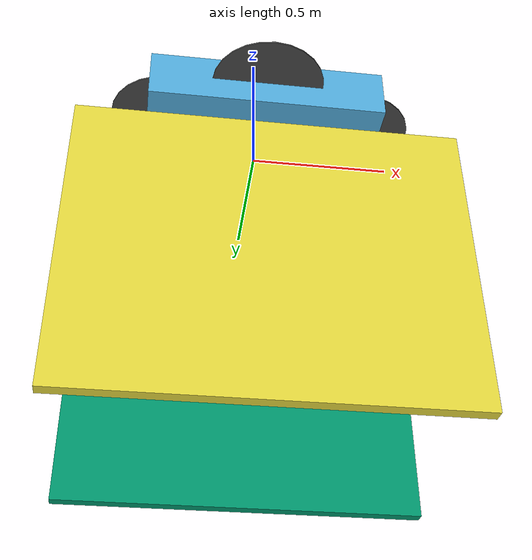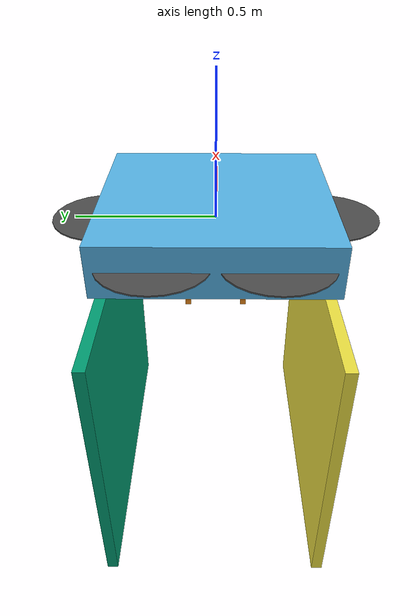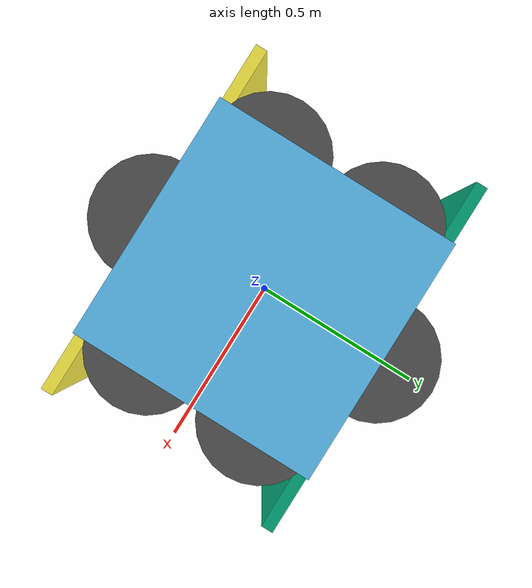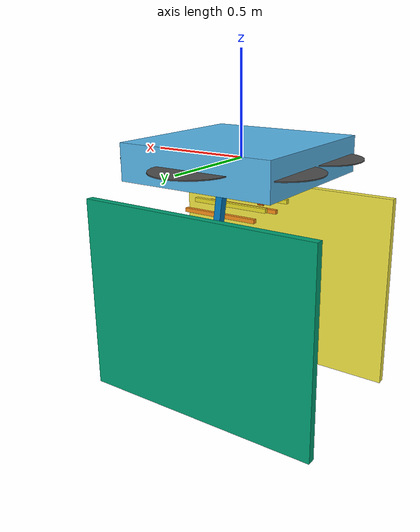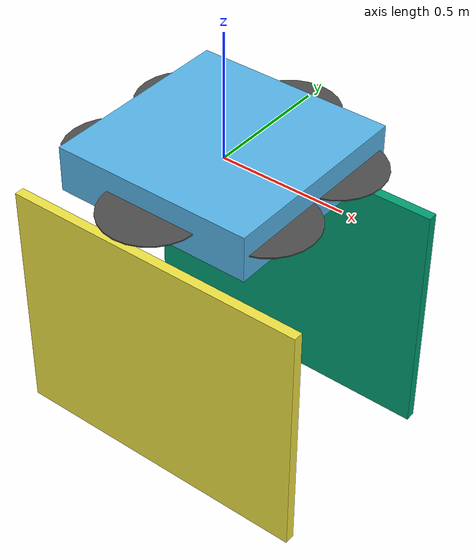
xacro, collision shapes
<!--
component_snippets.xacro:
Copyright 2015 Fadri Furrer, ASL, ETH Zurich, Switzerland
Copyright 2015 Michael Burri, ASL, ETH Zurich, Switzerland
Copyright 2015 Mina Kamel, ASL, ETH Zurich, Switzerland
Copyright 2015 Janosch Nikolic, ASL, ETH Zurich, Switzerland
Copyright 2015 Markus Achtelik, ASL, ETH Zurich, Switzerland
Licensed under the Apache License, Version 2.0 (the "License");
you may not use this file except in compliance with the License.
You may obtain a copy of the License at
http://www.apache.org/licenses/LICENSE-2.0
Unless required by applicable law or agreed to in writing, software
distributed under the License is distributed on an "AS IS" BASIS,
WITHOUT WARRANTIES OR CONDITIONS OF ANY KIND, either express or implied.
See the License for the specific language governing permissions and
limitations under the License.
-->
<?xml version="1.0"?>

<robot name="aeroarms" xmlns:xacro="http://ros.org/wiki/xacro">
  <!-- Properties that can be assigned at build time as arguments.
  Is there a reason not to make all properties arguments?
  -->
  <xacro:arg name='mavlink_addr' default='INADDR_ANY' />
  <xacro:arg name='mavlink_udp_port' default='14560' />
  <xacro:arg name='visual_material' default='DarkGrey' />
  <xacro:arg name='enable_mavlink_interface' default='true' />
  <xacro:arg name='enable_gps_plugin' default='true' />
  <xacro:arg name='gps_noise' default='true' />
  <xacro:arg name='enable_ground_truth' default='false' />
  <xacro:arg name='enable_logging' default='false' />

  <!-- macros for gazebo plugins, sensors -->
  <xacro:include filename="$(find arm_description)/urdf/component_snippets.xacro" />

  <!-- Instantiate aeroarms "mechanics" -->
  <xacro:include filename="$(find arm_description)/models/aeroarms_hecatonquiros_collision/geometry.xacro" />
 <!--Arm transmission-->
  <xacro:include filename="$(find arm_description)/models/aeroarms_hecatonquiros_collision/arm.transmission.xacro" />

  <xacro:if value="$(arg enable_gps_plugin)">
    <!-- Instantiate gps plugin. -->
    <xacro:gps_plugin_macro
      namespace="${namespace}"
      gps_noise="$(arg gps_noise)"
      >
    </xacro:gps_plugin_macro>
  </xacro:if>

  <xacro:if value="$(arg enable_mavlink_interface)">
  <!-- Instantiate mavlink telemetry interface. -->
  <xacro:mavlink_interface_macro
    namespace="${namespace}"
    imu_sub_topic="/imu"
    mavlink_addr="$(arg mavlink_addr)"
    mavlink_udp_port="$(arg mavlink_udp_port)"
    >
  </xacro:mavlink_interface_macro>
  </xacro:if>

  <!-- Mount an ADIS16448 IMU. -->
  <xacro:imu_plugin_macro
    namespace="${namespace}"
    imu_suffix=""
    parent_link="base_link"
    imu_topic="/imu"
    mass_imu_sensor="0.015"
    gyroscope_noise_density="0.0003394"
    gyroscopoe_random_walk="0.000038785"
    gyroscope_bias_correlation_time="1000.0"
    gyroscope_turn_on_bias_sigma="0.0087"
    accelerometer_noise_density="0.004"
    accelerometer_random_walk="0.006"
    accelerometer_bias_correlation_time="300.0"
    accelerometer_turn_on_bias_sigma="0.1960"
  >
    <inertia ixx="0.00001" ixy="0.0" ixz="0.0" iyy="0.00001" iyz="0.0" izz="0.00001" />
    <origin xyz="0 0 0" rpy="0 0 0" />
  </xacro:imu_plugin_macro>

  <xacro:if value="$(arg enable_ground_truth)">
    <!-- Mount an IMU providing ground truth. -->
    <xacro:imu_plugin_macro
      namespace="${namespace}"
      imu_suffix="gt"
      parent_link="base_link"
      imu_topic="ground_truth/imu"
      mass_imu_sensor="0.00001"
      gyroscope_noise_density="0.0"
      gyroscopoe_random_walk="0.0"
      gyroscope_bias_correlation_time="1000.0"
      gyroscope_turn_on_bias_sigma="0.0"
      accelerometer_noise_density="0.0"
      accelerometer_random_walk="0.0"
      accelerometer_bias_correlation_time="300.0"
      accelerometer_turn_on_bias_sigma="0.0"
    >
      <inertia ixx="0.00001" ixy="0.0" ixz="0.0" iyy="0.00001" iyz="0.0" izz="0.00001" />
      <origin xyz="0 0 0" rpy="0 0 0" />
    </xacro:imu_plugin_macro>

    <!-- Mount a generic odometry sensor providing ground truth. -->
    <xacro:odometry_plugin_macro
      namespace="${namespace}/ground_truth"
      odometry_sensor_suffix="gt"
      parent_link="base_link"
      pose_topic="pose"
      pose_with_covariance_topic="pose_with_covariance"
      position_topic="position"
      transform_topic="transform"
      odometry_topic="odometry"
      parent_frame_id="world"
      mass_odometry_sensor="0.00001"
      measurement_divisor="1"
      measurement_delay="0"
      unknown_delay="0.0"
      noise_normal_position="0 0 0"
      noise_normal_quaternion="0 0 0"
      noise_normal_linear_velocity="0 0 0"
      noise_normal_angular_velocity="0 0 0"
      noise_uniform_position="0 0 0"
      noise_uniform_quaternion="0 0 0"
      noise_uniform_linear_velocity="0 0 0"
      noise_uniform_angular_velocity="0 0 0"
      enable_odometry_map="false"
      odometry_map=""
      image_scale=""
    >
      <inertia ixx="0.00001" ixy="0.0" ixz="0.0" iyy="0.00001" iyz="0.0" izz="0.00001" /> <!-- [kg.m^2] [kg.m^2] [kg.m^2] [kg.m^2] [kg.m^2] [kg.m^2] -->
      <origin xyz="0.0 0.0 0.0" rpy="0.0 0.0 0.0" />
    </xacro:odometry_plugin_macro>
  </xacro:if>

  <xacro:if value="$(arg enable_logging)">
    <!-- Instantiate a logger -->
    <xacro:bag_plugin_macro
      namespace="${namespace}"
      bag_file="$(arg log_file)"
      rotor_velocity_slowdown_sim="${rotor_velocity_slowdown_sim}"
    >
    </xacro:bag_plugin_macro>
  </xacro:if>

</robot>

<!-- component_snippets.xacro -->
<robot xmlns:xacro="http://ros.org/wiki/xacro">
  <!-- Macro to add logging to a bag file. -->
  <xacro:macro name="bag_plugin_macro"
    params="namespace bag_file rotor_velocity_slowdown_sim">
    <gazebo>
      <plugin filename="librotors_gazebo_bag_plugin.so" name="rosbag">
        <robotNamespace>${namespace}</robotNamespace>
        <bagFileName>${bag_file}</bagFileName>
        <linkName>base_link</linkName>
        <frameId>base_link</frameId>
        <commandAttitudeThrustSubTopic>command/attitude</commandAttitudeThrustSubTopic>
        <commandAttitudeThrustPubTopic>command/attitude</commandAttitudeThrustPubTopic>
        <rotorVelocitySlowdownSim>${rotor_velocity_slowdown_sim}</rotorVelocitySlowdownSim>
      </plugin>
    </gazebo>
  </xacro:macro>

    <gazebo>
  <plugin name="gazebo_ros_control" filename="libgazebo_ros_control.so">
    <robotNamespace>/aeroarms</robotNamespace>
  </plugin>
</gazebo>

  <!-- Macro to add a camera. -->
  <xacro:macro name="camera_macro"
    params="namespace parent_link camera_suffix frame_rate
      horizontal_fov image_width image_height image_format min_distance
      max_distance noise_mean noise_stddev enable_visual *cylinder *origin">
    <link name="${namespace}/camera_${camera_suffix}_link">
      <collision>
        <origin xyz="0 0 0" rpy="0 0 0" />
        <geometry>
          <xacro:insert_block name="cylinder" />
        </geometry>
      </collision>
      <xacro:if value="${enable_visual}">
        <visual>
          <origin xyz="0 0 0" rpy="0 1.57079632679 0" />
          <geometry>
            <xacro:insert_block name="cylinder" />
          </geometry>
          <material name="red" />
        </visual>
      </xacro:if>
      <inertial>
        <mass value="1e-5" />
        <origin xyz="0 0 0" rpy="0 0 0" />
        <inertia ixx="1e-6" ixy="0" ixz="0" iyy="1e-6" iyz="0" izz="1e-6" />
      </inertial>
    </link>
    <joint name="${namespace}/camera_${camera_suffix}_joint" type="fixed">
      <xacro:insert_block name="origin" />
      <parent link="${parent_link}" />
      <child link="${namespace}/camera_${camera_suffix}_link" />
    </joint>
    <gazebo reference="${namespace}/camera_${camera_suffix}_link">
      <sensor type="camera" name="${namespace}_camera_${camera_suffix}">
        <update_rate>${frame_rate}</update_rate>
        <camera name="head">
          <horizontal_fov>${horizontal_fov}</horizontal_fov>
          <image>
            <width>${image_width}</width>
            <height>${image_height}</height>
            <format>${image_format}</format>
          </image>
          <clip>
            <near>${min_distance}</near>
            <far>${max_distance}</far>
          </clip>
          <noise>
            <type>gaussian</type>
            <!-- Noise is sampled independently per pixel on each frame.
                 That pixel's noise value is added to each of its color
                 channels, which at that point lie in the range [0,1]. -->
            <mean>${noise_mean}</mean>
            <stddev>${noise_stddev}</stddev>
          </noise>
        </camera>
        <plugin name="${namespace}_camera_${camera_suffix}_controller" filename="libgazebo_ros_camera.so">
          <robotNamespace>${namespace}</robotNamespace>
          <alwaysOn>true</alwaysOn>
          <updateRate>${frame_rate}</updateRate>
          <cameraName>camera_${camera_suffix}</cameraName>
          <imageTopicName>image_raw</imageTopicName>
          <cameraInfoTopicName>camera_info</cameraInfoTopicName>
          <frameName>camera_${camera_suffix}_link</frameName>
          <hackBaseline>0.0</hackBaseline>
          <distortionK1>0.0</distortionK1>
          <distortionK2>0.0</distortionK2>
          <distortionK3>0.0</distortionK3>
          <distortionT1>0.0</distortionT1>
          <distortionT2>0.0</distortionT2>
        </plugin>
      </sensor>
    </gazebo>
  </xacro:macro>

  <!-- Macro to add the controller interface. -->
  <xacro:macro name="controller_plugin_macro" params="namespace imu_sub_topic">
    <gazebo>
      <plugin name="controller_interface" filename="librotors_gazebo_controller_interface.so">
        <robotNamespace>${namespace}</robotNamespace>
        <commandAttitudeThrustSubTopic>/command/attitude</commandAttitudeThrustSubTopic>
        <commandRateThrustSubTopic>/command/rate</commandRateThrustSubTopic>
        <commandMotorSpeedSubTopic>/command/motor_speed</commandMotorSpeedSubTopic>
        <imuSubTopic>/${imu_sub_topic}</imuSubTopic>
        <motorSpeedCommandPubTopic>/gazebo/command/motor_speed</motorSpeedCommandPubTopic>
      </plugin>
    </gazebo>
  </xacro:macro>

  <!-- Macro to add the gps plugin. -->
  <xacro:macro name="gps_plugin_macro" params="namespace gps_noise">
    <gazebo>
      <plugin name='gps_plugin' filename='libgazebo_gps_plugin.so'>
        <robotNamespace>${namespace}</robotNamespace>
        <gpsNoise>${gps_noise}</gpsNoise>
      </plugin>
    </gazebo>
  </xacro:macro>

  <!-- Macro to add the mavlink interface. -->
  <xacro:macro name="mavlink_interface_macro" params="namespace imu_sub_topic mavlink_addr mavlink_udp_port">
    <gazebo>
      <plugin name="mavlink_interface" filename="librotors_gazebo_mavlink_interface.so">
        <robotNamespace>${namespace}</robotNamespace>
        <imuSubTopic>${imu_sub_topic}</imuSubTopic>
        <gpsSubTopic>/gps</gpsSubTopic>
        <mavlink_addr>$(arg mavlink_addr)</mavlink_addr>
        <mavlink_udp_port>$(arg mavlink_udp_port)</mavlink_udp_port>
        <motorSpeedCommandPubTopic>/gazebo/command/motor_speed</motorSpeedCommandPubTopic>
        <control_channels>
          <channel name="rotor1">
            <input_index>0</input_index>
            <input_offset>0</input_offset>
            <input_scaling>1000</input_scaling>
            <zero_position_disarmed>0</zero_position_disarmed>
            <zero_position_armed>100</zero_position_armed>
            <joint_control_type>velocity</joint_control_type>
          </channel>
          <channel name="rotor2">
            <input_index>1</input_index>
            <input_offset>0</input_offset>
            <input_scaling>1000</input_scaling>
            <zero_position_disarmed>0</zero_position_disarmed>
            <zero_position_armed>100</zero_position_armed>
            <joint_control_type>velocity</joint_control_type>
          </channel>
          <channel name="rotor3">
            <input_index>2</input_index>
            <input_offset>0</input_offset>
            <input_scaling>1000</input_scaling>
            <zero_position_disarmed>0</zero_position_disarmed>
            <zero_position_armed>100</zero_position_armed>
            <joint_control_type>velocity</joint_control_type>
          </channel>
          <channel name="rotor4">
            <input_index>3</input_index>
            <input_offset>0</input_offset>
            <input_scaling>1000</input_scaling>
            <zero_position_disarmed>0</zero_position_disarmed>
            <zero_position_armed>100</zero_position_armed>
            <joint_control_type>velocity</joint_control_type>
          </channel>
          <channel name="rotor5">
            <input_index>4</input_index>
            <input_offset>0</input_offset>
            <input_scaling>1000</input_scaling>
            <zero_position_disarmed>0</zero_position_disarmed>
            <zero_position_armed>100</zero_position_armed>
            <joint_control_type>velocity</joint_control_type>
          </channel>
          <channel name="rotor6">
            <input_index>5</input_index>
            <input_offset>0</input_offset>
            <input_scaling>1000</input_scaling>
            <zero_position_disarmed>0</zero_position_disarmed>
            <zero_position_armed>100</zero_position_armed>
            <joint_control_type>velocity</joint_control_type>
          </channel>
          <channel name="rotor7">
            <input_index>6</input_index>
            <input_offset>0</input_offset>
            <!-- joint limits [-0.524, 0.524] -->
            <input_scaling>0.524</input_scaling>
            <zero_position_disarmed>0</zero_position_disarmed>
            <zero_position_armed>0</zero_position_armed>
            <joint_control_type>position</joint_control_type>
            <joint_name>zephyr_delta_wing::flap_right_joint</joint_name>
            <joint_control_pid>
              <p>10.0</p>
              <i>0</i>
              <d>0</d>
              <iMax>0</iMax>
              <iMin>0</iMin>
              <cmdMax>20</cmdMax>
              <cmdMin>-20</cmdMin>
            </joint_control_pid>
          </channel>
          <channel name="rotor8">
            <input_index>7</input_index>
            <input_offset>0</input_offset>
            <input_scaling>0.524</input_scaling>
            <zero_position_disarmed>0</zero_position_disarmed>
            <zero_position_armed>0</zero_position_armed>
            <joint_control_type>position</joint_control_type>
          </channel>
        </control_channels>
      </plugin>
    </gazebo>
  </xacro:macro>

  <!-- Macro to add an IMU. -->
  <xacro:macro name="imu_plugin_macro"
    params="namespace imu_suffix parent_link imu_topic
      mass_imu_sensor gyroscope_noise_density gyroscopoe_random_walk
      gyroscope_bias_correlation_time gyroscope_turn_on_bias_sigma
      accelerometer_noise_density accelerometer_random_walk
      accelerometer_bias_correlation_time accelerometer_turn_on_bias_sigma
      *inertia *origin">
    <!-- IMU link -->
    <link name="${namespace}/imu${imu_suffix}_link">
      <inertial>
        <xacro:insert_block name="inertia" />
        <mass value="${mass_imu_sensor}" />  <!-- [kg] -->
        <origin xyz="0 0 0" rpy="0 0 0" />
      </inertial>
    </link>
    <!-- IMU joint -->
    <joint name="${namespace}/imu${imu_suffix}_joint" type="revolute">
      <xacro:insert_block name="origin" />
      <parent link="${parent_link}" />
      <child link="${namespace}/imu${imu_suffix}_link" />
      <limit upper="0" lower="0" effort="0" velocity="0" />
    </joint>
    <gazebo>
      <plugin filename="librotors_gazebo_imu_plugin.so" name="rotors_gazebo_imu${imu_suffix}_plugin">
      <!-- A good description of the IMU parameters can be found in the kalibr documentation:
           https://github.com/ethz-asl/kalibr/wiki/IMU-Noise-Model-and-Intrinsics -->
        <robotNamespace>${namespace}</robotNamespace> <!-- (string, required): ros namespace in which the messages are published -->
        <linkName>${namespace}/imu${imu_suffix}_link</linkName> <!-- (string, required): name of the body which holds the IMU sensor -->
        <imuTopic>${imu_topic}</imuTopic> <!-- (string): name of the sensor output topic and prefix of service names (defaults to imu) -->
        <gyroscopeNoiseDensity>${gyroscope_noise_density}</gyroscopeNoiseDensity> <!-- Gyroscope noise density (two-sided spectrum) [rad/s/sqrt(Hz)] -->
        <gyroscopeRandomWalk>${gyroscopoe_random_walk}</gyroscopeRandomWalk> <!-- Gyroscope bias random walk [rad/s/s/sqrt(Hz)] -->
        <gyroscopeBiasCorrelationTime>${gyroscope_bias_correlation_time}</gyroscopeBiasCorrelationTime> <!-- Gyroscope bias correlation time constant [s] -->
        <gyroscopeTurnOnBiasSigma>${gyroscope_turn_on_bias_sigma}</gyroscopeTurnOnBiasSigma> <!-- Gyroscope turn on bias standard deviation [rad/s] -->
        <accelerometerNoiseDensity>${accelerometer_noise_density}</accelerometerNoiseDensity> <!-- Accelerometer noise density (two-sided spectrum) [m/s^2/sqrt(Hz)] -->
        <accelerometerRandomWalk>${accelerometer_random_walk}</accelerometerRandomWalk> <!-- Accelerometer bias random walk. [m/s^2/s/sqrt(Hz)] -->
        <accelerometerBiasCorrelationTime>${accelerometer_bias_correlation_time}</accelerometerBiasCorrelationTime> <!-- Accelerometer bias correlation time constant [s] -->
        <accelerometerTurnOnBiasSigma>${accelerometer_turn_on_bias_sigma}</accelerometerTurnOnBiasSigma> <!-- Accelerometer turn on bias standard deviation [m/s^2] -->
      </plugin>
    </gazebo>
  </xacro:macro>

<!-- Macro to add a generic odometry sensor. -->
  <xacro:macro name="odometry_plugin_macro"
    params="
      namespace odometry_sensor_suffix parent_link pose_topic pose_with_covariance_topic
      position_topic transform_topic odometry_topic parent_frame_id
      mass_odometry_sensor measurement_divisor measurement_delay unknown_delay
      noise_normal_position noise_normal_quaternion noise_normal_linear_velocity
      noise_normal_angular_velocity noise_uniform_position
      noise_uniform_quaternion noise_uniform_linear_velocity
      noise_uniform_angular_velocity enable_odometry_map odometry_map
      image_scale *inertia *origin">
    <!-- odometry link -->
    <link name="${namespace}/odometry_sensor${odometry_sensor_suffix}_link">
      <inertial>
        <xacro:insert_block name="inertia" />
        <mass value="${mass_odometry_sensor}" />  <!-- [kg] -->
      </inertial>
    </link>
    <!-- odometry joint -->
    <joint name="${namespace}/odometry_sensor${odometry_sensor_suffix}_joint" type="revolute">
      <parent link="${parent_link}" />
      <xacro:insert_block name="origin" />
      <child link="${namespace}/odometry_sensor${odometry_sensor_suffix}_link" />
      <limit upper="0" lower="0" effort="0" velocity="0" />
    </joint>
    <gazebo>
      <plugin filename="librotors_gazebo_odometry_plugin.so" name="odometry_sensor${odometry_sensor_suffix}">
        <linkName>${namespace}/odometry_sensor${odometry_sensor_suffix}_link</linkName>
        <robotNamespace>${namespace}</robotNamespace>
        <poseTopic>${pose_topic}</poseTopic>
        <poseWithCovarianceTopic>${pose_with_covariance_topic}</poseWithCovarianceTopic>
        <positionTopic>${position_topic}</positionTopic>
        <transformTopic>${transform_topic}</transformTopic>
        <odometryTopic>${odometry_topic}</odometryTopic>
        <parentFrameId>${parent_frame_id}</parentFrameId>  <!-- Use the scoped link name here. e.g. Model::link. -->
        <measurementDivisor>${measurement_divisor}</measurementDivisor> <!-- only every (seq % measurementDivisor) == 0 measurement is published [int] -->
        <measurementDelay>${measurement_delay}</measurementDelay> <!-- time that measurement gets held back before it's published in [simulation cycles (int)] -->
        <unknownDelay>${unknown_delay}</unknownDelay> <!-- additional delay, that just gets added to the timestamp [s] -->
        <noiseNormalPosition>${noise_normal_position}</noiseNormalPosition> <!-- standard deviation of additive white gaussian noise [m] -->
        <noiseNormalQuaternion>${noise_normal_quaternion}</noiseNormalQuaternion> <!-- standard deviation white gaussian noise [rad]: q_m = q*quaternionFromSmallAngleApproximation(noiseNormalQ) -->
        <noiseNormalLinearVelocity>${noise_normal_linear_velocity}</noiseNormalLinearVelocity> <!-- standard deviation of additive white gaussian noise [m/s] -->
        <noiseNormalAngularVelocity>${noise_normal_angular_velocity}</noiseNormalAngularVelocity> <!-- standard deviation of additive white gaussian noise [rad/s] -->
        <noiseUniformPosition>${noise_uniform_position}</noiseUniformPosition> <!-- symmetric bounds of uniform noise [m] -->
        <noiseUniformQuaternion>${noise_uniform_quaternion}</noiseUniformQuaternion> <!-- symmetric bounds of uniform noise [rad], computation see above -->
        <noiseUniformLinearVelocity>${noise_uniform_linear_velocity}</noiseUniformLinearVelocity>  <!-- symmetric bounds of uniform noise [m/s] -->
        <noiseUniformAngularVelocity>${noise_uniform_angular_velocity}</noiseUniformAngularVelocity>  <!-- symmetric bounds of uniform noise [rad/s] -->
        <xacro:if value="${enable_odometry_map}">
          <covarianceImage>package://rotors_gazebo/resource/${odometry_map}</covarianceImage>
          <covarianceImageScale>${image_scale}</covarianceImageScale>
        </xacro:if>
      </plugin>
    </gazebo>
  </xacro:macro>

  <!-- Macro to add the wind plugin. -->
  <xacro:macro name="wind_plugin_macro"
    params="namespace xyz_offset wind_direction wind_force_mean
      wind_gust_direction wind_gust_duration wind_gust_start
      wind_gust_force_mean">
    <gazebo>
      <plugin filename="librotors_gazebo_wind_plugin.so" name="wind_plugin">
        <frameId>base_link</frameId>
        <linkName>base_link</linkName>
        <robotNamespace>${namespace}</robotNamespace>
        <xyzOffset>${xyz_offset}</xyzOffset>
        <windDirection>${wind_direction}</windDirection>
        <windForceMean>${wind_force_mean}</windForceMean>
        <windGustDirection>${wind_gust_direction}</windGustDirection>
        <windGustDuration>${wind_gust_duration}</windGustDuration>
        <windGustStart>${wind_gust_start}</windGustStart>
        <windGustForceMean>${wind_gust_force_mean}</windGustForceMean>
      </plugin>
    </gazebo>
  </xacro:macro>

  <!-- VI sensor macros -->
  <!-- Macro to add a VI-sensor camera. -->
  <xacro:macro name="vi_sensor_camera_macro"
    params="namespace parent_link camera_suffix frame_rate *origin">
    <xacro:camera_macro
      namespace="${namespace}"
      parent_link="${parent_link}"
      camera_suffix="${camera_suffix}"
      frame_rate="${frame_rate}"
      horizontal_fov="1.3962634"
      image_width="752"
      image_height="480"
      image_format="L8"
      min_distance="0.02"
      max_distance="30"
      noise_mean="0.0"
      noise_stddev="0.007"
      enable_visual="false">
      <cylinder length="0.01" radius="0.007" />
      <xacro:insert_block name="origin" />
    </xacro:camera_macro>
  </xacro:macro>

  <!-- Macro to add a depth camera on the VI-sensor. -->
  <xacro:macro name="vi_sensor_depth_macro"
    params="namespace parent_link camera_suffix frame_rate *origin">
    <link name="${namespace}/camera_${camera_suffix}_link">
      <collision>
        <origin xyz="0 0 0" rpy="0 0 0" />
        <geometry>
          <cylinder length="0.01" radius="0.007" />
        </geometry>
      </collision>
      <inertial>
        <mass value="1e-5" />
        <origin xyz="0 0 0" rpy="0 0 0" />
        <inertia ixx="1e-6" ixy="0" ixz="0" iyy="1e-6" iyz="0" izz="1e-6" />
      </inertial>
    </link>
    <joint name="${namespace}/camera_${camera_suffix}_joint" type="fixed">
      <xacro:insert_block name="origin" />
      <parent link="${parent_link}" />
      <child link="${namespace}/camera_${camera_suffix}_link" />
      <limit upper="0" lower="0" effort="0" velocity="0" />
    </joint>
    <!-- Optical center of camera -->
    <link name="${namespace}/camera_${camera_suffix}_optical_center_link" />
    <joint name="${namespace}/camera_${camera_suffix}_optical_center_joint" type="fixed">
      <origin xyz="0 0 0" rpy="${-PI/2} 0 ${-PI/2}" />
      <parent link="${namespace}/camera_${camera_suffix}_link" />
      <child link="${namespace}/camera_${camera_suffix}_optical_center_link" />
      <limit upper="0" lower="0" effort="0" velocity="0" />
    </joint>
    <gazebo reference="${namespace}/camera_${camera_suffix}_link">
      <sensor type="depth" name="${namespace}_camera_{camera_suffix}">
        <always_on>true</always_on>
        <update_rate>${frame_rate}</update_rate>
        <camera>
          <horizontal_fov>2</horizontal_fov>
          <image>
            <format>L8</format>
            <width>640</width>
            <height>480</height>
          </image>
          <clip>
            <near>0.01</near>
            <far>100</far>
          </clip>
        </camera>
        <plugin name="${namespace}_camera_{camera_suffix}" filename="libgazebo_ros_openni_kinect.so">
          <robotNamespace>${namespace}</robotNamespace>
          <alwaysOn>true</alwaysOn>
          <baseline>0.11</baseline>
          <updateRate>${frame_rate}</updateRate>
          <cameraName>camera_${camera_suffix}</cameraName>
          <imageTopicName>camera/image_raw</imageTopicName>
          <cameraInfoTopicName>camera/camera_info</cameraInfoTopicName>
          <depthImageTopicName>depth/disparity</depthImageTopicName>
          <depthImageCameraInfoTopicName>depth/camera_info</depthImageCameraInfoTopicName>
          <pointCloudTopicName>depth/points</pointCloudTopicName>
          <frameName>camera_${camera_suffix}_optical_center_link</frameName>
          <pointCloudCutoff>0.5</pointCloudCutoff>
          <distortionK1>0.0</distortionK1>
          <distortionK2>0.0</distortionK2>
          <distortionK3>0.0</distortionK3>
          <distortionT1>0.0</distortionT1>
          <distortionT2>0.0</distortionT2>
        </plugin>
      </sensor>
    </gazebo>
  </xacro:macro>

  <!-- VI-Sensor Macro -->
  <xacro:macro name="vi_sensor_macro" params="namespace parent_link *origin">
    <!-- Vi Sensor Link -->
    <link name="${namespace}/vi_sensor_link">
      <collision>
        <origin xyz="0 0 0" rpy="0 0 0" />
        <geometry>
          <box size="0.03 0.133 0.057" />

        </geometry>
      </collision>

      <visual>
        <origin xyz="0 0 0" rpy="0 0 0" />
        <geometry>
          <!--mesh filename="package://rotors_description/meshes/vi_sensor.dae" scale="1 1 1" /-->
          <box size="0.03 0.133 0.057" />

        </geometry>
      </visual>

      <inertial>
        <mass value="0.13" />
        <origin xyz="0 0 0" rpy="0 0 0" />
        <inertia ixx="1e-6" ixy="0" ixz="0" iyy="1e-6" iyz="0" izz="1e-6" />
      </inertial>
    </link>
    <joint name="{namespace}_vi_sensor_joint" type="fixed">
      <xacro:insert_block name="origin" />
      <parent link="${parent_link}" />
      <child link="${namespace}/vi_sensor_link" />
    </joint>
    <!-- Cameras -->
    <xacro:if value="$(arg enable_cameras)">
      <!-- Left Camera -->
      <xacro:vi_sensor_camera_macro
        namespace="${namespace}" parent_link="${namespace}/vi_sensor_link"
        camera_suffix="left" frame_rate="30.0">
        <origin xyz="0.015 0.055 0.0065" rpy="0 0 0" />
      </xacro:vi_sensor_camera_macro>
      <!-- Right Camera -->
      <xacro:vi_sensor_camera_macro namespace="${namespace}"
        parent_link="${namespace}/vi_sensor_link"
        camera_suffix="right" frame_rate="30.0">
        <origin xyz="0.015 -0.055 0.0065" rpy="0 0 0" />
      </xacro:vi_sensor_camera_macro>
    </xacro:if>

    <!-- Depth Sensor -->
    <xacro:if value="$(arg enable_depth)">
      <xacro:vi_sensor_depth_macro
        namespace="${namespace}" parent_link="${namespace}/vi_sensor_link"
        camera_suffix="depth" frame_rate="30.0">
        <origin xyz="0.015 0.055 0.0065" rpy="0 0 0" />
      </xacro:vi_sensor_depth_macro>
    </xacro:if>

    <!-- Groundtruth -->
    <xacro:if value="$(arg enable_ground_truth)">
      <!-- Odometry Sensor -->
      <xacro:odometry_plugin_macro
        namespace="${namespace}/ground_truth"
        odometry_sensor_suffix=""
        parent_link="${namespace}/vi_sensor_link"
        pose_topic="pose"
        pose_with_covariance_topic="pose_with_covariance"
        position_topic="position"
        transform_topic="transform"
        odometry_topic="odometry"
        parent_frame_id="world"
        mass_odometry_sensor="0.00001"
        measurement_divisor="1"
        measurement_delay="0"
        unknown_delay="0.0"
        noise_normal_position="0 0 0"
        noise_normal_quaternion="0 0 0"
        noise_normal_linear_velocity="0 0 0"
        noise_normal_angular_velocity="0 0 0"
        noise_uniform_position="0 0 0"
        noise_uniform_quaternion="0 0 0"
        noise_uniform_linear_velocity="0 0 0"
        noise_uniform_angular_velocity="0 0 0"
        enable_odometry_map="false"
        odometry_map=""
        image_scale="">
        <inertia ixx="0.00001" ixy="0.0" ixz="0.0" iyy="0.00001" iyz="0.0" izz="0.00001" /> <!-- [kg.m^2] [kg.m^2] [kg.m^2] [kg.m^2] [kg.m^2] [kg.m^2] -->
        <origin xyz="0.0 0.0 0.0" rpy="0.0 0.0 0.0" />
      </xacro:odometry_plugin_macro>
    </xacro:if>

    <!-- ADIS16448 IMU. -->
    <xacro:imu_plugin_macro
      namespace="${namespace}"
      imu_suffix=""
      parent_link="${namespace}/vi_sensor_link"
      imu_topic="/imu"
      mass_imu_sensor="0.015"
      gyroscope_noise_density="0.0003394"
      gyroscopoe_random_walk="0.000038785"
      gyroscope_bias_correlation_time="1000.0"
      gyroscope_turn_on_bias_sigma="0.0087"
      accelerometer_noise_density="0.004"
      accelerometer_random_walk="0.006"
      accelerometer_bias_correlation_time="300.0"
      accelerometer_turn_on_bias_sigma="0.1960">
      <inertia ixx="0.00001" ixy="0.0" ixz="0.0" iyy="0.00001" iyz="0.0" izz="0.00001" />
      <origin xyz="0.015 0 0.0113" rpy="0 0 0" />
    </xacro:imu_plugin_macro>
  </xacro:macro>

</robot>

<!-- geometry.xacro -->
<robot name="aeroarms" xmlns:xacro="http://ros.org/wiki/xacro">
  <!-- Properties -->
  <xacro:property name="model_name" value="aeroarms_hecatonquiros_collision" />
  <xacro:property name="namespace" value="" />
  <xacro:property name="rotor_velocity_slowdown_sim" value="10" />
  <xacro:property name="mesh_file" value="multirotor.dae" />
  <xacro:property name="mesh_scale" value=".001 .001 .001"/>
  <xacro:property name="mesh_scale_prop" value=".001 .001 .001"/>
  <!--xacro:property name="mass" value="5.850" /--> <!-- [kg] -->
  <xacro:property name="mass" value="0.5" />
  <xacro:property name="body_width" value="0.8" />
  <xacro:property name="body_height" value="0.6" />
  <xacro:property name="mass_rotor" value="0.005" /> <!-- [kg] -->
  <xacro:property name="rotor_offset_top" value="0.0" />
  <xacro:property name="radius_rotor" value="0.19" />
  <xacro:property name="motor_constant" value="20.0e-06" /> <!-- [kg.m/s^2] -->
  <xacro:property name="moment_constant" value="0.12" />
  <xacro:property name="time_constant_up" value="0.0125" />
  <xacro:property name="time_constant_down" value="0.025" />
  <xacro:property name="max_rot_velocity" value="1100" /> <!-- [rad/s] -->
  <xacro:property name="sin30" value="0.5" />
  <xacro:property name="cos30" value="0.866025403784" />
  <xacro:property name="sqrt2" value="1.4142135623730951" />
  <xacro:property name="rotor_drag_coefficient" value="8.06428e-04" />
  <xacro:property name="rolling_moment_coefficient" value="0.000001" />
  <xacro:property name="color" value="$(arg visual_material)" />

  <!--Heca arms parameters-->
  <xacro:property name="PI" value="3.1415926535897931"/>
  <!--xacro:property name="h_mass" value="1" /-->
  <xacro:property name="width" value="0.1" /> <!-- Square dimensions (widthxwidth) of beams -->
  <xacro:property name="height1" value="2" /> <!-- Link 1 -->
  <xacro:property name="height2" value="1" /> <!-- Link 2 -->
  <xacro:property name="height3" value="1" /> <!-- Link 3 -->
  <!--Heca arms parameters-->

<gazebo>
  <plugin name="gazebo_ros_control" filename="libgazebo_ros_control.so">
    <robotNamespace>/aeroarms</robotNamespace>
    <robotSimType>gazebo_ros_control/DefaultRobotHWSim</robotSimType>
  </plugin>
</gazebo>

  <!-- Property Blocks -->
  <xacro:property name="body_inertia">
    <inertia ixx="0.287" ixy="0.0" ixz="0.0" iyy="0.287" iyz="0.0" izz="0.468" /> <!-- [kg.m^2] [kg.m^2] [kg.m^2] [kg.m^2] [kg.m^2] [kg.m^2] -->
  </xacro:property>

  <!-- inertia of a single rotor, assuming it is a cuboid. Height=3mm, width=15mm -->
  <xacro:property name="rotor_inertia">
    <inertia
    ixx="${1/12 * mass_rotor * (0.015 * 0.015 + 0.003 * 0.003) * rotor_velocity_slowdown_sim}"
    iyy="${1/12 * mass_rotor * (4 * radius_rotor * radius_rotor + 0.003 * 0.003) * rotor_velocity_slowdown_sim}"
    izz="${1/12 * mass_rotor * (4 * radius_rotor * radius_rotor + 0.015 * 0.015) * rotor_velocity_slowdown_sim}"
    ixy="0.0" ixz="0.0"  iyz="0.0" /> <!-- [kg.m^2] [kg.m^2] [kg.m^2] [kg.m^2] [kg.m^2] [kg.m^2] -->
  </xacro:property>

  <!--Property cylinder_camera-->
  <xacro:property name="camera_cylinder">
    <cylinder length="0.001" radius="0.01" />
  </xacro:property>

  <!-- Included URDF Files -->
  <xacro:include filename="$(find arm_description)/urdf/multirotor_base.xacro" />
  <xacro:include filename="$(find arm_description)/urdf/component_snippets.xacro" />
  <xacro:include filename="$(find arm_description)/models/aeroarms_hecatonquiros_collision/arm.transmission.xacro" />
  <xacro:include filename="$(find arm_description)/models/aeroarms_hecatonquiros_collision/model.gazebo" />

  <!-- Instantiate multirotor_base_macro once -->
  <xacro:multirotor_base_macro
    model_name="${model_name}"
    robot_namespace="${namespace}"
    mass="${mass}"
    body_width="${body_width}"
    body_height="${body_height}"
    mesh_file="${mesh_file}"
    mesh_scale="${mesh_scale}"
    color="DarkGrey"
    >
    <xacro:insert_block name="body_inertia" />
  </xacro:multirotor_base_macro>

  <xacro:camera_macro
    namespace="${namespace}"
    parent_link="base_link"
    camera_suffix="0"
    frame_rate="10"
    horizontal_fov="1.07079633"
    image_width="800"
    image_height="600"
    image_format="R8G8B8"
    min_distance="0.01"
    max_distance="100"
    noise_mean="0"
    noise_stddev="0"
    enable_visual="true"
    >
    <xacro:insert_block name="camera_cylinder"/>
    <origin xyz="0 0 -0.10" rpy="0 1.57 0" />
  </xacro:camera_macro>

  <link name="camera_depth_base_link"></link>
  <joint name="camera_depth_base_joint" type="fixed">
    <origin xyz="0.4 0 0" rpy="0 0 0"/>
    <parent link="base_link"/>
    <child link="camera_depth_base_link"/>
  </joint>

  <link name="camera_depth_link"></link>
  <joint name="camera_depth_joint" type="fixed">
    <origin xyz="0 0 0" rpy="${-pi/2} 0 ${-pi/2} "/>
    <parent link="camera_depth_base_link"/>
    <child link="camera_depth_link"/>
  </joint>

  <!-- Base -->

    <link name="left/arm_0_bottom">

      <visual>
         <geometry>
         <box size="0.02 0.02 0.02"/>
            <!--mesh filename="package://arm_description/meshes/new_meshes/arm_0_attachment.stl" /-->
         </geometry>
          <origin rpy="0 0 0" xyz="0 0 0" />
      </visual>
      <collision>
      <origin rpy="0 0 0" xyz="0 0 0" />
            <geometry>
        <box size="0.02 0.02 0.02"/>
      </geometry>
      </collision>

          <inertial>
      <origin rpy="0 0 0" xyz="0 0 0" />
      <mass value="${mass}"/>
      <inertia
	  ixx="${mass / 12.0 * (width*width + height1*height1)}" ixy="0.0" ixz="0.0"
	  iyy="${mass / 12.0 * (height1*height1 + width*width)}" iyz="0.0"
	  izz="${mass / 12.0 * (width*width + width*width)}"/>
    </inertial>

   </link>
   <joint name="left/arm_0_bottom_joint" type="continuous">
      <parent link="base_link" />
      <child link="left/arm_0_bottom" />
      <origin rpy="0 0 0" xyz="0 0.1 -0.15" />
   </joint>

   <link name="left/arm_1">

      <visual>
         <geometry>
         <box size="0.02 0.02 0.4"/>
            <!--mesh filename="package://arm_description/meshes/new_meshes/arm_1.stl"  /-->
         </geometry>
         <origin rpy="0 0 ${pi}" xyz="0 0 0" />
      </visual>
            <collision>
             <origin rpy="0 0 ${pi}" xyz="0 0 0" />
            <geometry>
        <box size="0.02 0.02 0.4"/>
      </geometry>
      </collision>

    <inertial>
      <origin rpy="0 0 0" xyz="0 0 0" />
      <mass value="${mass}"/>
      <inertia
	  ixx="${mass / 12.0 * (width*width + height1*height1)}" ixy="0.0" ixz="0.0"
	  iyy="${mass / 12.0 * (height1*height1 + width*width)}" iyz="0.0"
	  izz="${mass / 12.0 * (width*width + width*width)}"/>
    </inertial>

   </link>
   <joint name="left/arm_1_joint" type="continuous">
      <parent link="left/arm_0_bottom" />
      <child link="left/arm_1" />
      <origin xyz="0 0 -0.06" rpy="0 ${3*pi/2} 0" />
   </joint>

   <link name="left/arm_final">

      <visual>
         <geometry>
         <box size="0.02 0.02 0.4"/>
            <!--mesh filename="package://arm_description/meshes/new_meshes/arm_1.stl"  /-->
         </geometry>
         <origin rpy="0 0 0" xyz="0 0 0" />
      </visual>
            <collision>
             <origin rpy="0 0 0" xyz="0 0 0" />
            <geometry>
        <box size="0.02 0.02 0.4"/>
      </geometry>
      </collision>

    <inertial>
      <origin rpy="0 0 0" xyz="0 0 0" />
      <mass value="${mass}"/>
      <inertia
	  ixx="${mass / 12.0 * (width*width + height1*height1)}" ixy="0.0" ixz="0.0"
	  iyy="${mass / 12.0 * (height1*height1 + width*width)}" iyz="0.0"
	  izz="${mass / 12.0 * (width*width + width*width)}"/>
    </inertial>

   </link>
   <joint name="left/arm_final_joint" type="fixed">
      <parent link="left/arm_1" />
      <child link="left/arm_final" />
      <origin xyz="-0.06 0 -0.06" rpy="0 0 0" />
   </joint>

<!--RIGHT ARMMMMMMMMMMMMMMMMMMMMMMMMMMMMMMMMMMMMMMMMMMMMMMMMMMMMMMMM-->

<link name="right/arm_0_bottom">

      <visual>
         <geometry>
         <box size="0.02 0.02 0.02"/>
            <!--mesh filename="package://arm_description/meshes/new_meshes/arm_0_attachment.stl" /-->
         </geometry>
          <origin rpy="0 0 0" xyz="0 0 0" />
      </visual>
    <collision>
    <origin rpy="0 0 0" xyz="0 0 0" />
            <geometry>
        <box size="0.02 0.02 0.02"/>
      </geometry>
      </collision>

          <inertial>
      <origin rpy="0 0 0" xyz="0 0 0" />
      <mass value="${mass}"/>
      <inertia
	  ixx="${mass / 12.0 * (width*width + height1*height1)}" ixy="0.0" ixz="0.0"
	  iyy="${mass / 12.0 * (height1*height1 + width*width)}" iyz="0.0"
	  izz="${mass / 12.0 * (width*width + width*width)}"/>
    </inertial>

   </link>
   <joint name="right/arm_0_bottom_joint" type="continuous">
      <parent link="base_link" />
      <child link="right/arm_0_bottom" />
      <origin rpy="0 0 0" xyz="0 -0.1 -0.15" />
   </joint>

   <link name="right/arm_1">
      <visual>
         <geometry>
         <box size="0.02 0.02 0.4"/>
            <!--mesh filename="package://arm_description/meshes/new_meshes/arm_1.stl"  /-->
         </geometry>
         <origin rpy="0 0 ${pi}" xyz="0 0 0" />
      </visual>
            <collision>
             <origin rpy="0 0 ${pi}" xyz="0 0 0" />
            <geometry>
        <box size="0.02 0.02 0.4"/>
      </geometry>
      </collision>

    <inertial>
      <origin rpy="0 0 0" xyz="0 0 0" />
      <mass value="${mass}"/>
      <inertia
	  ixx="${mass / 12.0 * (width*width + height1*height1)}" ixy="0.0" ixz="0.0"
	  iyy="${mass / 12.0 * (height1*height1 + width*width)}" iyz="0.0"
	  izz="${mass / 12.0 * (width*width + width*width)}"/>
    </inertial>

   </link>
   <joint name="right/arm_1_joint" type="continuous">
      <parent link="right/arm_0_bottom" />
      <child link="right/arm_1" />
      <origin xyz="0 0 -0.06" rpy="0 ${3*pi/2} 0" />
   </joint>

   <link name="right/arm_final">

      <visual>
         <geometry>
         <box size="0.02 0.02 0.4"/>
            <!--mesh filename="package://arm_description/meshes/new_meshes/arm_1.stl"  /-->
         </geometry>
         <origin rpy="0 0 ${pi}" xyz="0 0 0" />
      </visual>
            <collision>
             <origin rpy="0 0 ${pi}" xyz="0 0 0" />
            <geometry>
        <box size="0.02 0.02 0.4"/>
      </geometry>
      </collision>

    <inertial>
      <origin rpy="0 0 0" xyz="0 0 0" />
      <mass value="${mass}"/>
      <inertia
	  ixx="${mass / 12.0 * (width*width + height1*height1)}" ixy="0.0" ixz="0.0"
	  iyy="${mass / 12.0 * (height1*height1 + width*width)}" iyz="0.0"
	  izz="${mass / 12.0 * (width*width + width*width)}"/>
    </inertial>

   </link>
   <joint name="right/arm_final_joint" type="fixed">
      <parent link="right/arm_1" />
      <child link="right/arm_final" />
      <origin xyz="-0.06 0 -0.06" rpy="0 0 0" />
   </joint>

<!--sssssssssssssssssssssssssssssssssssssssssssssssssssssssssssssssssssssssssssssssss-->

  <!-- Instantiate rotors -->
  <xacro:vertical_rotor
    robot_namespace="${namespace}"
    suffix="right"
    direction="cw"
    motor_constant="${motor_constant}"
    moment_constant="${moment_constant}"
    parent="base_link"
    mass_rotor="${mass_rotor}"
    radius_rotor="${radius_rotor}"
    time_constant_up="${time_constant_up}"
    time_constant_down="${time_constant_down}"
    max_rot_velocity="${max_rot_velocity}"
    motor_number="0"
    rotor_drag_coefficient="${rotor_drag_coefficient}"
    rolling_moment_coefficient="${rolling_moment_coefficient}"
    mesh="prop"
    mesh_scale="${mesh_scale_prop}"
    color="DarkGrey">
    <origin xyz="0 -0.390 0" rpy="0 0 0" />
    <xacro:insert_block name="rotor_inertia" />
  </xacro:vertical_rotor>

  <xacro:vertical_rotor
    robot_namespace="${namespace}"
    suffix="left"
    direction="ccw"
    motor_constant="${motor_constant}"
    moment_constant="${moment_constant}"
    parent="base_link"
    mass_rotor="${mass_rotor}"
    radius_rotor="${radius_rotor}"
    time_constant_up="${time_constant_up}"
    time_constant_down="${time_constant_down}"
    max_rot_velocity="${max_rot_velocity}"
    motor_number="1"
    rotor_drag_coefficient="${rotor_drag_coefficient}"
    rolling_moment_coefficient="${rolling_moment_coefficient}"
    mesh="prop"
    mesh_scale="${mesh_scale_prop}"
    color="DarkGrey">
    <origin xyz="0 0.390 0" rpy="0 0 0" />
    <xacro:insert_block name="rotor_inertia" />
  </xacro:vertical_rotor>

  <xacro:vertical_rotor robot_namespace="${namespace}"
    suffix="front_left"
    direction="cw"
    motor_constant="${motor_constant}"
    moment_constant="${moment_constant}"
    parent="base_link"
    mass_rotor="${mass_rotor}"
    radius_rotor="${radius_rotor}"
    time_constant_up="${time_constant_up}"
    time_constant_down="${time_constant_down}"
    max_rot_velocity="${max_rot_velocity}"
    motor_number="2"
    rotor_drag_coefficient="${rotor_drag_coefficient}"
    rolling_moment_coefficient="${rolling_moment_coefficient}"
    mesh="prop"
    mesh_scale="${mesh_scale_prop}"
    color="${color}">
    <origin xyz="0.33775 0.195 0" rpy="0 0 0" />
    <xacro:insert_block name="rotor_inertia" />
  </xacro:vertical_rotor>

  <xacro:vertical_rotor robot_namespace="${namespace}"
    suffix="back_right"
    direction="ccw"
    motor_constant="${motor_constant}"
    moment_constant="${moment_constant}"
    parent="base_link"
    mass_rotor="${mass_rotor}"
    radius_rotor="${radius_rotor}"
    time_constant_up="${time_constant_up}"
    time_constant_down="${time_constant_down}"
    max_rot_velocity="${max_rot_velocity}"
    motor_number="3"
    rotor_drag_coefficient="${rotor_drag_coefficient}"
    rolling_moment_coefficient="${rolling_moment_coefficient}"
    mesh="prop"
    mesh_scale="${mesh_scale_prop}"
    color="DarkGrey">
    <origin xyz="-0.33775 -0.195 0" rpy="0 0 0" />
    <xacro:insert_block name="rotor_inertia" />
  </xacro:vertical_rotor>

  <xacro:vertical_rotor robot_namespace="${namespace}"
    suffix="front_right"
    direction="ccw"
    motor_constant="${motor_constant}"
    moment_constant="${moment_constant}"
    parent="base_link"
    mass_rotor="${mass_rotor}"
    radius_rotor="${radius_rotor}"
    time_constant_up="${time_constant_up}"
    time_constant_down="${time_constant_down}"
    max_rot_velocity="${max_rot_velocity}"
    motor_number="4"
    rotor_drag_coefficient="${rotor_drag_coefficient}"
    rolling_moment_coefficient="${rolling_moment_coefficient}"
    mesh="prop"
    mesh_scale="${mesh_scale_prop}"
    color="${color}">
    <origin xyz="0.33775 -0.195 0" rpy="0 0 0" />
    <xacro:insert_block name="rotor_inertia" />
  </xacro:vertical_rotor>

  <xacro:vertical_rotor robot_namespace="${namespace}"
    suffix="back_left"
    direction="cw"
    motor_constant="${motor_constant}"
    moment_constant="${moment_constant}"
    parent="base_link"
    mass_rotor="${mass_rotor}"
    radius_rotor="${radius_rotor}"
    time_constant_up="${time_constant_up}"
    time_constant_down="${time_constant_down}"
    max_rot_velocity="${max_rot_velocity}"
    motor_number="5"
    rotor_drag_coefficient="${rotor_drag_coefficient}"
    rolling_moment_coefficient="${rolling_moment_coefficient}"
    mesh="prop"
    mesh_scale="${mesh_scale_prop}"
    color="DarkGrey">
    <origin xyz="-0.33775 0.195 0" rpy="0 0 0" />
    <xacro:insert_block name="rotor_inertia" />
  </xacro:vertical_rotor>

</robot>

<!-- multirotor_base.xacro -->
<robot xmlns:xacro="http://ros.org/wiki/xacro">
  <!-- Main multirotor link -->
  <xacro:macro name="multirotor_base_macro"
    params="model_name robot_namespace mass body_width body_height mesh_file mesh_scale color *inertia">
    <link name="base_link"></link>

    <joint name="base_joint" type="fixed">
      <origin xyz="0 0 0" rpy="0 0 0" />
      <parent link="base_link" />
      <child link="base_link_inertia" />
    </joint>

    <link name="base_link_inertia">
      <inertial>
        <mass value="${mass}" />  <!-- [kg] -->
        <origin xyz="0 0 0" />
        <xacro:insert_block name="inertia" />
      </inertial>

      <visual>
        <origin xyz="0 0 0" rpy="0 0 0" />
        <geometry>
          <mesh filename="package://arm_description/models/${model_name}/meshes/${mesh_file}"
            scale="${mesh_scale}" />

        </geometry>
      </visual>

      <collision>
        <origin xyz="0 0 0" rpy="0 0 0" />
        <geometry>
        <!--mesh filename="package://arm_description/TODO/models/${model_name}/meshes/${mesh_file}"
            scale="${mesh_scale}" /-->
          <!--box size="${body_width} ${body_width} ${body_height}" /-->
	<box size="${body_width} ${body_width} 0.18" />
        </geometry>
      </collision>
    </link>

<link name="base_link_inertia_collision_one">
      <inertial>
        <mass value="0.01" />  <!-- [kg] QUE HACEMOS AHORA CON LAS MASAS?????????????????????-->
        <origin xyz="0 0 0" />
        <xacro:insert_block name="inertia" />
      </inertial>

      <collision>
        <origin xyz="0 0.4 -0.7" rpy="0 0 1.57" />   <!--izquierda-->
	<!--origin xyz="0 0.2 -0.283" rpy="0 0 0" /-->
        <geometry>
	<!--box size="0.28 0.02 0.02" /-->
	<box size="0.04 1.25 1" />
        </geometry>
      </collision>
    </link>
    <joint name="base_link_inertia_collision_one_joint" type="fixed">
      <origin xyz="0 0 0" rpy="0 0 0" />
      <parent link="base_link" />
      <child link="base_link_inertia_collision_one" />
    </joint>

<link name="base_link_inertia_collision_two">
      <inertial>
        <mass value="0.01" />  <!-- [kg] QUE HACEMOS AHORA CON LAS MASAS?????????????????????-->
        <origin xyz="0 0 0" />
        <xacro:insert_block name="inertia" />
      </inertial>

      <collision>
	<!--origin xyz="0 -0.2 -0.283" rpy="0 0 0" /-->
        <origin xyz="0 -0.4 -0.7" rpy="0 0 1.57" />
        <geometry>
	<!--box size="0.28 0.02 0.02" /-->
	<box size="0.04 1.25 1" />
        </geometry>
      </collision>
    </link>
    <joint name="base_link_inertia_collision_two_joint" type="fixed">
      <origin xyz="0 0 0" rpy="0 0 0" />
      <parent link="base_link" />
      <child link="base_link_inertia_collision_two" />
    </joint>

<link name="base_link_inertia_collision_three">
      <inertial>
        <mass value="0.01" />  <!-- [kg] QUE HACEMOS AHORA CON LAS MASAS?????????????????????-->
        <origin xyz="0 0 0" />
        <xacro:insert_block name="inertia" />
      </inertial>

      <collision>
        <origin xyz="0 0.175 -0.183" rpy="-1.37 0 0" />
        <geometry>
	<box size="0.035 0.177 0.038" />
        </geometry>
      </collision>
    </link>
    <joint name="base_link_inertia_collision_three_joint" type="fixed">
      <origin xyz="0 0 0" rpy="0 0 0" />
      <parent link="base_link" />
      <child link="base_link_inertia_collision_three" />
    </joint>

<link name="base_link_inertia_collision_four">
      <inertial>
        <mass value="0.01" />  <!-- [kg] QUE HACEMOS AHORA CON LAS MASAS?????????????????????-->
        <origin xyz="0 0 0" />
        <xacro:insert_block name="inertia" />
      </inertial>

      <collision>
        <origin xyz="0 -0.175 -0.183" rpy="1.37 0 0" />
        <geometry>
	<box size="0.035 0.177 0.038" />
        </geometry>
      </collision>
    </link>
    <joint name="base_link_inertia_collision_four_joint" type="fixed">
      <origin xyz="0 0 0" rpy="0 0 0" />
      <parent link="base_link" />
      <child link="base_link_inertia_collision_four" />
    </joint>

    <!-- attach multirotor_base_plugin to the base_link -->
    <gazebo>
      <plugin filename="librotors_gazebo_multirotor_base_plugin.so" name="rosbag">
        <robotNamespace>${robot_namespace}</robotNamespace>
        <linkName>base_link</linkName>
        <rotorVelocitySlowdownSim>${rotor_velocity_slowdown_sim}</rotorVelocitySlowdownSim>
      </plugin>
    </gazebo>
    <gazebo reference="base_link">
      <material>Gazebo/${color}</material>
      <collision name='base_link_inertia_collision'>
        <surface>
          <contact>
            <ode>
              <min_depth>0.001</min_depth>
              <max_vel>0.0</max_vel>
            </ode>
          </contact>
          <friction>
            <ode/>
          </friction>
        </surface>
      </collision>
   </gazebo>
  </xacro:macro>

  <!-- Rotor joint and link -->
  <xacro:macro name="vertical_rotor"
    params="robot_namespace suffix direction motor_constant moment_constant parent mass_rotor radius_rotor time_constant_up time_constant_down max_rot_velocity motor_number rotor_drag_coefficient rolling_moment_coefficient color mesh mesh_scale *origin *inertia">
    <joint name="rotor_${motor_number}_joint" type="continuous">
      <xacro:insert_block name="origin" />
      <axis xyz="0 0 1" />
      <!-- TODO(ff): not currently set because it's not yet supported -->
      <parent link="${parent}" />
      <child link="rotor_${motor_number}" />

    </joint>
    <!-- TODO(ff): not currently set because it's not yet supported -->
    <link name="rotor_${motor_number}">
      <inertial>
        <mass value="${mass_rotor}" /> <!-- [kg] -->
        <xacro:insert_block name="inertia" />
      </inertial>
      <visual>
        <geometry>

          <!--mesh filename="package://rotors_description/meshes/propeller_${direction}.dae" -->
          <mesh filename="package://arm_description/models/${model_name}/meshes/${mesh}_${direction}.dae"
            scale="${mesh_scale}" />

        </geometry>
      </visual>
      <collision>
        <geometry>
          <cylinder length="0.005" radius="${radius_rotor}" />
        </geometry>
      </collision>
    </link>
    <gazebo>
      <plugin name="${suffix}_motor_model" filename="librotors_gazebo_motor_model.so">
        <robotNamespace>${robot_namespace}</robotNamespace>
        <jointName>rotor_${motor_number}_joint</jointName>
        <linkName>rotor_${motor_number}</linkName>
        <turningDirection>${direction}</turningDirection>
        <timeConstantUp>${time_constant_up}</timeConstantUp>
        <timeConstantDown>${time_constant_down}</timeConstantDown>
        <maxRotVelocity>${max_rot_velocity}</maxRotVelocity>
        <motorConstant>${motor_constant}</motorConstant>
        <momentConstant>${moment_constant}</momentConstant>
        <commandSubTopic>/gazebo/command/motor_speed</commandSubTopic>
        <motorNumber>${motor_number}</motorNumber>
        <rotorDragCoefficient>${rotor_drag_coefficient}</rotorDragCoefficient>
        <rollingMomentCoefficient>${rolling_moment_coefficient}</rollingMomentCoefficient>
        <motorSpeedPubTopic>/motor_speed/${motor_number}</motorSpeedPubTopic>
        <rotorVelocitySlowdownSim>${rotor_velocity_slowdown_sim}</rotorVelocitySlowdownSim>
      </plugin>
    </gazebo>
    <gazebo reference="rotor_${motor_number}">
      <material>Gazebo/${color}</material>
    </gazebo>
  </xacro:macro>
</robot>
